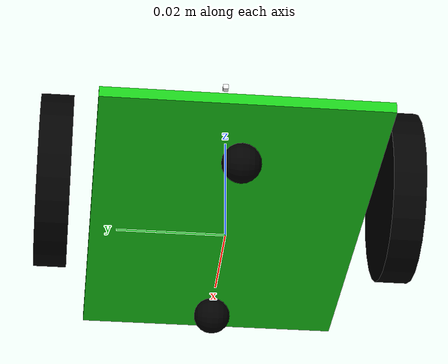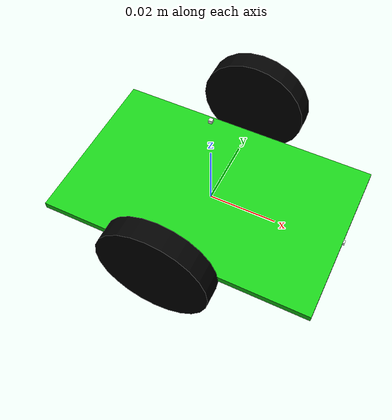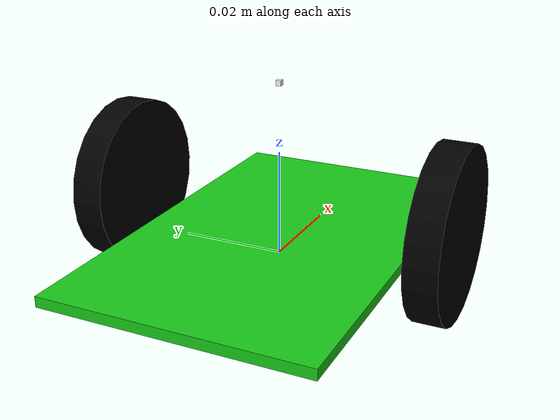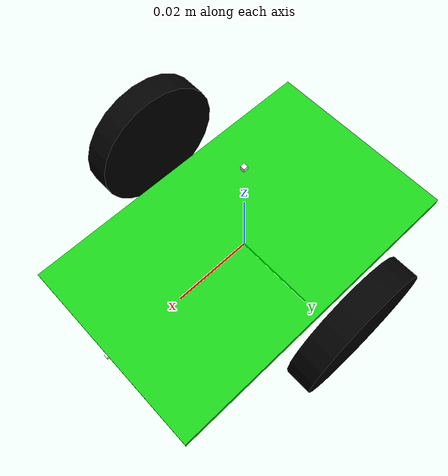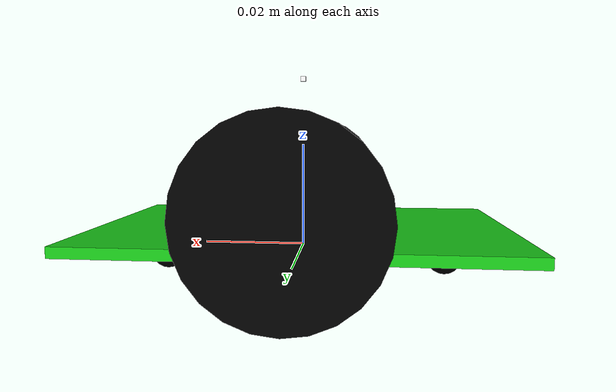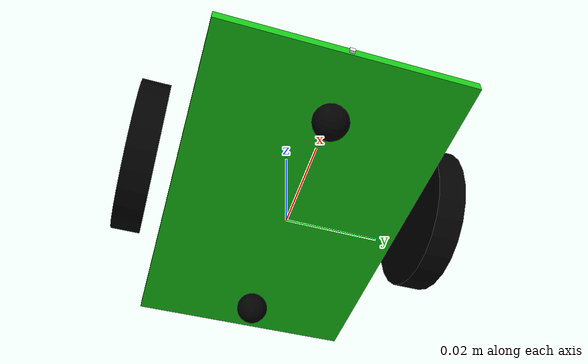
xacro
<?xml version="1.0" ?>

<robot name="basic_amr" xmlns:xacro="http://ros.org/wiki/xacro">

  <!-- Begin - Include -->

  <xacro:include filename="$(find basic_amr_description)/urdf/basic_amr_gazebo.xacro" />

  <!-- End - Include -->

  <material name="white">
    <color rgba="1 1 1 1"/>
  </material>

  <material name="black">
    <color rgba="0 0 0 1"/>
  </material>

  <material name="green">
    <color rgba="0.1 0.8 0.1 1"/>
  </material>

  <!-- Begin - Robot description -->

  <link name="base_footprint" />

  <joint name="base_link__base_footprint" type="fixed">
    <parent link="base_footprint"/>
    <child link="base_link"/>
    <origin xyz="0.0 0.0 0.003" rpy="0 0 0"/>
  </joint>

  <link name="base_link">
    <origin rpy="0 0 0" xyz="0.00 0 0.00"/>
    <visual>
      <geometry>
        <box size="0.08 0.05 0.002"/>
      </geometry>
      <material name="green"/>
    </visual>
    <collision>
      <geometry>
        <box size="0.08 0.05 0.002"/>
      </geometry>
    </collision>
    <inertial>
      <mass value="0.2" />
      <inertia ixx="0.1" ixy="0.0" ixz="0.0" iyy="0.1" iyz="0.0" izz="0.1" />
    </inertial>
  </link>

  <link name="fcastor_wheel">
    <origin rpy="0 0 0" xyz="0.00 0 0.00"/>
    <visual>
      <geometry>
        <sphere radius="0.0035"/>
      </geometry>
      <material name="black"/>
    </visual>
    <collision>
      <geometry>
        <sphere radius="0.0035"/>
      </geometry>
    </collision>
    <inertial>
      <origin xyz="0 0 0" />
      <mass value="0.002" />
      <inertia ixx="0.0001" ixy="0.0" ixz="0.0" iyy="0.0001" iyz="0.0" izz="0.0001" />
    </inertial>
  </link>

  <joint name="base_link__fcastor_wheel" type="fixed">
    <parent link="base_link"/>
    <child link="fcastor_wheel"/>
    <origin xyz="0.028 0 -0.005" rpy="1.5708 0 0"/>
  </joint>

  <link name="bcastor_wheel">
    <origin rpy="0 0 0" xyz="0.00 0 0.00"/>
    <visual>
      <geometry>
        <sphere radius="0.0035"/>
      </geometry>
      <material name="black"/>
    </visual>
    <collision>
      <geometry>
        <sphere radius="0.0035"/>
      </geometry>
    </collision>
    <inertial>
      <origin xyz="0 0 0" />
      <mass value="0.002" />
      <inertia ixx="0.0001" ixy="0.0" ixz="0.0" iyy="0.0001" iyz="0.0" izz="0.0001" />
    </inertial>
  </link>

  <joint name="base_link__bcastor_wheel" type="fixed">
    <parent link="base_link"/>
    <child link="bcastor_wheel"/>
    <origin xyz="-0.028 0 -0.005" rpy="1.5708 0 0"/>
  </joint>

  <link name="left_wheel">
    <origin rpy="0 0 0" xyz="0.00 0 0.00"/>
    <visual>
      <geometry>
        <cylinder length="0.006" radius="0.016"/>
      </geometry>
      <material name="black"/>
    </visual>
    <collision>
      <geometry>
        <cylinder length="0.006" radius="0.016"/>
      </geometry>
    </collision>
    <inertial>
      <mass value="0.02" />
      <inertia ixx="0.001" ixy="0.0" ixz="0.0" iyy="0.001" iyz="0.0" izz="0.001" />
    </inertial>
  </link>

  <joint name="wheel_left_joint" type="continuous">
    <parent link="base_link"/>
    <child link="left_wheel"/>
    <origin xyz="0 0.032 0.007" rpy="1.5708 0 0"/>
    <axis xyz="0 0 -1"/>
  </joint>

  <link name="right_wheel">
    <origin rpy="0 0 0" xyz="0.00 0 0.00"/>
    <visual>
      <geometry>
        <cylinder length="0.006" radius="0.016"/>
      </geometry>
      <material name="black"/>
    </visual>
    <collision>
      <geometry>
        <cylinder length="0.006" radius="0.016"/>
      </geometry>
    </collision>
    <inertial>
      <mass value="0.02" />
      <inertia ixx="0.001" ixy="0.0" ixz="0.0" iyy="0.001" iyz="0.0" izz="0.001" />
    </inertial>
  </link>

  <joint name="wheel_right_joint" type="continuous">
    <parent link="base_link"/>
    <child link="right_wheel"/>
    <origin xyz="0 -0.032 0.007" rpy="1.5708 0 0"/>
    <axis xyz="0 0 -1"/>
  </joint>

  <!-- End - Robot description -->

  <!-- Begin - Sensor description -->

  <!-- RGB Camera representation -->

  <link name="front_camera_link">
    <visual>
      <origin rpy="0.0 0 0" xyz="0 0 0"/>
      <geometry>
        <box size="0.001 0.001 0.001"/>
      </geometry>
      <material name="white"/>
    </visual>
  </link>

  <joint name="base_link__front_camera" type="fixed">
    <parent link="base_link"/>
    <child link="front_camera_link"/>
    <origin xyz="0.040 0 0" rpy="0 0 0"/>
  </joint>

  <!-- 2D Lidar representation -->

  <link name="base_scan">
    <visual>
      <origin rpy="0.0 0 0" xyz="0 0 0"/>
      <geometry>
        <box size="0.001 0.001 0.001"/>
      </geometry>
      <material name="white"/>
    </visual>
  </link>

  <joint name="base_link__base_scan" type="fixed">
    <parent link="base_link"/>
    <child link="base_scan"/>
    <origin xyz="0 0 0.03" rpy="0 0 0"/>
  </joint>

  <!-- End - Sensor description -->

</robot>
